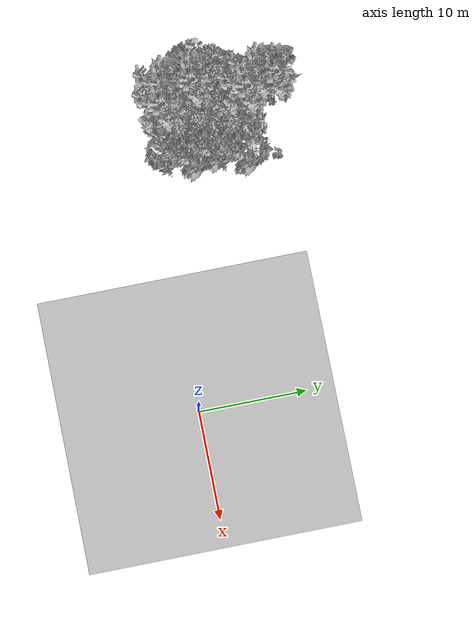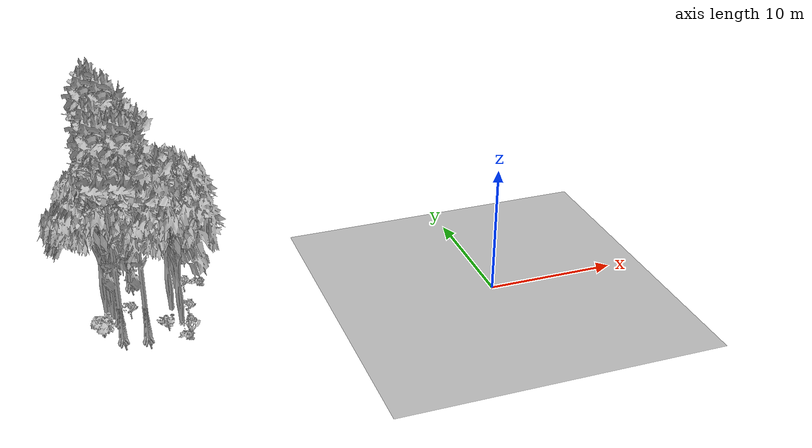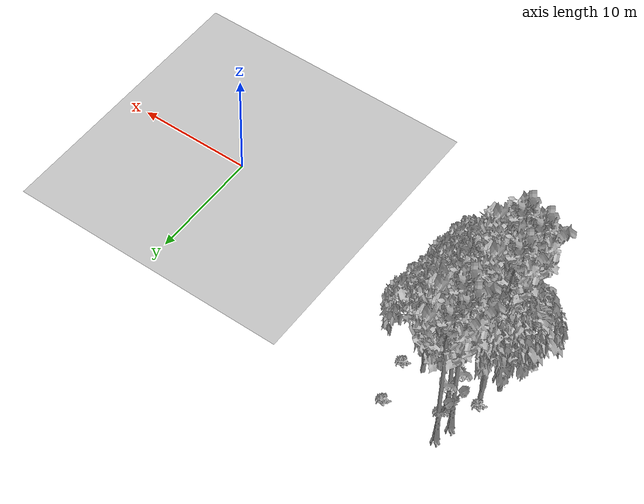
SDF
<sdf version="1.7">
 <world name="default">
  <model name="ground_plane">
   <static>1</static>
   <link name="link">
    <collision name="collision">
     <pose>-50 0 0 0 -0 0</pose>
     <geometry><plane><normal>0 0 1</normal><size>80 80</size></plane></geometry>
     <surface><contact><ode><min_depth>0.01</min_depth><max_vel>0</max_vel></ode></contact></surface>
    </collision>
    <visual name="grass">
     <cast_shadows>0</cast_shadows>
     <geometry>
      <mesh>
       <scale>0.46714285714285714 0.46714285714285714 0.1</scale>
       <uri>file://grass_plane/meshes/grass_plane.dae</uri>
      </mesh>
     </geometry>
    </visual>
   </link>
  </model>
  <model name="Tree 15">
   <static>1</static>
   <pose>-27.015665207595248 12.257064036631448 0 1.57079 -0 0</pose>
   <link name="link">
    <collision name="collision">
     <geometry><mesh><scale>3.5 5 3.5</scale><uri>model://tree_9/meshes/tree_9.obj</uri></mesh></geometry>
    </collision>
    <visual name="visual">
     <geometry><mesh><scale>3.5 5 3.5</scale><uri>model://tree_9/meshes/tree_9.obj</uri></mesh></geometry>
    </visual>
   </link>
  </model>
  <model name="Tree 131">
   <static>1</static>
   <pose>-28.19869476502873 5.2655762239955095 0 1.57079 -0 0</pose>
   <link name="link">
    <collision name="collision">
     <geometry><mesh><scale>3.5 5 3.5</scale><uri>model://tree_2/meshes/tree_2.obj</uri></mesh></geometry>
    </collision>
    <visual name="visual">
     <geometry><mesh><scale>3.5 5 3.5</scale><uri>model://tree_2/meshes/tree_2.obj</uri></mesh></geometry>
    </visual>
   </link>
  </model>
  <model name="Tree 147">
   <static>1</static>
   <pose>-23.08336777062552 7.896392498006797 0 1.57079 -0 0</pose>
   <link name="link">
    <collision name="collision">
     <geometry><mesh><scale>3.5 5 3.5</scale><uri>model://tree_2/meshes/tree_2.obj</uri></mesh></geometry>
    </collision>
    <visual name="visual">
     <geometry><mesh><scale>3.5 5 3.5</scale><uri>model://tree_2/meshes/tree_2.obj</uri></mesh></geometry>
    </visual>
   </link>
  </model>
  <model name="Tree 149">
   <static>1</static>
   <pose>-23.545101295304256 3.0394723315278753 0 1.57079 -0 0</pose>
   <link name="link">
    <collision name="collision">
     <geometry><mesh><scale>3.5 5 3.5</scale><uri>model://tree_2/meshes/tree_2.obj</uri></mesh></geometry>
    </collision>
    <visual name="visual">
     <geometry><mesh><scale>3.5 5 3.5</scale><uri>model://tree_2/meshes/tree_2.obj</uri></mesh></geometry>
    </visual>
   </link>
  </model>
  <model name="Tree 186">
   <static>1</static>
   <pose>-27.82963190707264 7.340334555873689 0 1.57079 -0 0</pose>
   <link name="link">
    <collision name="collision">
     <geometry><mesh><scale>3.5 5 3.5</scale><uri>model://tree_2/meshes/tree_2.obj</uri></mesh></geometry>
    </collision>
    <visual name="visual">
     <geometry><mesh><scale>3.5 5 3.5</scale><uri>model://tree_2/meshes/tree_2.obj</uri></mesh></geometry>
    </visual>
   </link>
  </model>
  <model name="Tree 234">
   <static>1</static>
   <pose>-28.598061604808265 5.8959532349336925 0 1.57079 -0 0</pose>
   <link name="link">
    <collision name="collision">
     <geometry><mesh><scale>3.5 5 3.5</scale><uri>model://tree_2/meshes/tree_2.obj</uri></mesh></geometry>
    </collision>
    <visual name="visual">
     <geometry><mesh><scale>3.5 5 3.5</scale><uri>model://tree_2/meshes/tree_2.obj</uri></mesh></geometry>
    </visual>
   </link>
  </model>
  <model name="Tree 235">
   <static>1</static>
   <pose>-23.94686296382558 5.0605157887511325 0 1.57079 -0 0</pose>
   <link name="link">
    <collision name="collision">
     <geometry><mesh><scale>3.5 5 3.5</scale><uri>model://tree_2/meshes/tree_2.obj</uri></mesh></geometry>
    </collision>
    <visual name="visual">
     <geometry><mesh><scale>3.5 5 3.5</scale><uri>model://tree_2/meshes/tree_2.obj</uri></mesh></geometry>
    </visual>
   </link>
  </model>
  <model name="Tree 311">
   <static>1</static>
   <pose>-26.252629105778666 9.60017479138508 0 1.57079 -0 0</pose>
   <link name="link">
    <collision name="collision">
     <geometry><mesh><scale>3.5 5 3.5</scale><uri>model://tree_9/meshes/tree_9.obj</uri></mesh></geometry>
    </collision>
    <visual name="visual">
     <geometry><mesh><scale>3.5 5 3.5</scale><uri>model://tree_9/meshes/tree_9.obj</uri></mesh></geometry>
    </visual>
   </link>
  </model>
  <model name="Tree 392">
   <static>1</static>
   <pose>-27.742651277677165 4.94363627334571 0 1.57079 -0 0</pose>
   <link name="link">
    <collision name="collision">
     <geometry><mesh><scale>3.5 5 3.5</scale><uri>model://tree_9/meshes/tree_9.obj</uri></mesh></geometry>
    </collision>
    <visual name="visual">
     <geometry><mesh><scale>3.5 5 3.5</scale><uri>model://tree_9/meshes/tree_9.obj</uri></mesh></geometry>
    </visual>
   </link>
  </model>
  <model name="Tree 467">
   <static>1</static>
   <pose>-27.350768139440298 10.802795858157303 0 1.57079 -0 0</pose>
   <link name="link">
    <collision name="collision">
     <geometry><mesh><scale>3.5 5 3.5</scale><uri>model://tree_9/meshes/tree_9.obj</uri></mesh></geometry>
    </collision>
    <visual name="visual">
     <geometry><mesh><scale>3.5 5 3.5</scale><uri>model://tree_9/meshes/tree_9.obj</uri></mesh></geometry>
    </visual>
   </link>
  </model>
  <model name="Tree 553">
   <static>1</static>
   <pose>-26.12132141552373 1.9750665769441014 0 1.57079 -0 0</pose>
   <link name="link">
    <collision name="collision">
     <geometry><mesh><scale>3.5 5 3.5</scale><uri>model://tree_9/meshes/tree_9.obj</uri></mesh></geometry>
    </collision>
    <visual name="visual">
     <geometry><mesh><scale>3.5 5 3.5</scale><uri>model://tree_9/meshes/tree_9.obj</uri></mesh></geometry>
    </visual>
   </link>
  </model>
  <model name="Tree 576">
   <static>1</static>
   <pose>-27.845761584042002 2.405263810703488 0 1.57079 -0 0</pose>
   <link name="link">
    <collision name="collision">
     <geometry><mesh><scale>3.5 5 3.5</scale><uri>model://tree_9/meshes/tree_9.obj</uri></mesh></geometry>
    </collision>
    <visual name="visual">
     <geometry><mesh><scale>3.5 5 3.5</scale><uri>model://tree_9/meshes/tree_9.obj</uri></mesh></geometry>
    </visual>
   </link>
  </model>
  <model name="Bush 92">
   <static>1</static>
   <pose>-22.506670749690663 7.122766279451362 0 1.57079 -0 0</pose>
   <link name="link">
    <collision name="collision">
     <geometry><mesh><scale>2 2 2</scale><uri>model://bush_5/meshes/bush_5.obj</uri></mesh></geometry>
     <surface><contact><collide_without_contact>false</collide_without_contact></contact></surface>
    </collision>
    <visual name="visual">
     <geometry><mesh><scale>2 2 2</scale><uri>model://bush_5/meshes/bush_5.obj</uri></mesh></geometry>
    </visual>
   </link>
  </model>
  <model name="Bush 120">
   <static>1</static>
   <pose>-22.79683364109927 3.7263481034286627 0 1.57079 -0 0</pose>
   <link name="link">
    <collision name="collision">
     <geometry><mesh><scale>2 2 2</scale><uri>model://bush_5/meshes/bush_5.obj</uri></mesh></geometry>
     <surface><contact><collide_without_contact>false</collide_without_contact></contact></surface>
    </collision>
    <visual name="visual">
     <geometry><mesh><scale>2 2 2</scale><uri>model://bush_5/meshes/bush_5.obj</uri></mesh></geometry>
    </visual>
   </link>
  </model>
  <model name="Bush 142">
   <static>1</static>
   <pose>-22.03742543612815 11.773401519567592 0 1.57079 -0 0</pose>
   <link name="link">
    <collision name="collision">
     <geometry><mesh><scale>2 2 2</scale><uri>model://bush_2/meshes/bush_2.obj</uri></mesh></geometry>
     <surface><contact><collide_without_contact>false</collide_without_contact></contact></surface>
    </collision>
    <visual name="visual">
     <geometry><mesh><scale>2 2 2</scale><uri>model://bush_2/meshes/bush_2.obj</uri></mesh></geometry>
    </visual>
   </link>
  </model>
  <model name="Bush 192">
   <static>1</static>
   <pose>-26.048507889930896 10.210212394825852 0 1.57079 -0 0</pose>
   <link name="link">
    <collision name="collision">
     <geometry><mesh><scale>2 2 2</scale><uri>model://bush_2/meshes/bush_2.obj</uri></mesh></geometry>
     <surface><contact><collide_without_contact>false</collide_without_contact></contact></surface>
    </collision>
    <visual name="visual">
     <geometry><mesh><scale>2 2 2</scale><uri>model://bush_2/meshes/bush_2.obj</uri></mesh></geometry>
    </visual>
   </link>
  </model>
  <model name="Bush 229">
   <static>1</static>
   <pose>-26.872713190824204 4.722907799907787 0 1.57079 -0 0</pose>
   <link name="link">
    <collision name="collision">
     <geometry><mesh><scale>2 2 2</scale><uri>model://bush_5/meshes/bush_5.obj</uri></mesh></geometry>
     <surface><contact><collide_without_contact>false</collide_without_contact></contact></surface>
    </collision>
    <visual name="visual">
     <geometry><mesh><scale>2 2 2</scale><uri>model://bush_5/meshes/bush_5.obj</uri></mesh></geometry>
    </visual>
   </link>
  </model>
  <model name="Bush 238">
   <static>1</static>
   <pose>-24.539984997249512 2.2769450026910363 0 1.57079 -0 0</pose>
   <link name="link">
    <collision name="collision">
     <geometry><mesh><scale>2 2 2</scale><uri>model://bush_0/meshes/bush_0.obj</uri></mesh></geometry>
     <surface><contact><collide_without_contact>false</collide_without_contact></contact></surface>
    </collision>
    <visual name="visual">
     <geometry><mesh><scale>2 2 2</scale><uri>model://bush_0/meshes/bush_0.obj</uri></mesh></geometry>
    </visual>
   </link>
  </model>
  <model name="Bush 311">
   <static>1</static>
   <pose>-21.309597399826163 8.116897292876821 0 1.57079 -0 0</pose>
   <link name="link">
    <collision name="collision">
     <geometry><mesh><scale>2 2 2</scale><uri>model://bush_2/meshes/bush_2.obj</uri></mesh></geometry>
     <surface><contact><collide_without_contact>false</collide_without_contact></contact></surface>
    </collision>
    <visual name="visual">
     <geometry><mesh><scale>2 2 2</scale><uri>model://bush_2/meshes/bush_2.obj</uri></mesh></geometry>
    </visual>
   </link>
  </model>
  <model name="Bush 329">
   <static>1</static>
   <pose>-23.450758536749568 1.1430969385533274 0 1.57079 -0 0</pose>
   <link name="link">
    <collision name="collision">
     <geometry><mesh><scale>2 2 2</scale><uri>model://bush_2/meshes/bush_2.obj</uri></mesh></geometry>
     <surface><contact><collide_without_contact>false</collide_without_contact></contact></surface>
    </collision>
    <visual name="visual">
     <geometry><mesh><scale>2 2 2</scale><uri>model://bush_2/meshes/bush_2.obj</uri></mesh></geometry>
    </visual>
   </link>
  </model>
  <model name="Bush 461">
   <static>1</static>
   <pose>-27.998743316895677 7.9757861095735265 0 1.57079 -0 0</pose>
   <link name="link">
    <collision name="collision">
     <geometry><mesh><scale>2 2 2</scale><uri>model://bush_2/meshes/bush_2.obj</uri></mesh></geometry>
     <surface><contact><collide_without_contact>false</collide_without_contact></contact></surface>
    </collision>
    <visual name="visual">
     <geometry><mesh><scale>2 2 2</scale><uri>model://bush_2/meshes/bush_2.obj</uri></mesh></geometry>
    </visual>
   </link>
  </model>
  <model name="Bush 545">
   <static>1</static>
   <pose>-23.073859618053334 1.6712438478606444 0 1.57079 -0 0</pose>
   <link name="link">
    <collision name="collision">
     <geometry><mesh><scale>2 2 2</scale><uri>model://bush_4/meshes/bush_4.obj</uri></mesh></geometry>
     <surface><contact><collide_without_contact>false</collide_without_contact></contact></surface>
    </collision>
    <visual name="visual">
     <geometry><mesh><scale>2 2 2</scale><uri>model://bush_4/meshes/bush_4.obj</uri></mesh></geometry>
    </visual>
   </link>
  </model>
  <model name="Bush 577">
   <static>1</static>
   <pose>-29.102108684036438 2.9117592873271363 0 1.57079 -0 0</pose>
   <link name="link">
    <collision name="collision">
     <geometry><mesh><scale>2 2 2</scale><uri>model://bush_1/meshes/bush_1.obj</uri></mesh></geometry>
     <surface><contact><collide_without_contact>false</collide_without_contact></contact></surface>
    </collision>
    <visual name="visual">
     <geometry><mesh><scale>2 2 2</scale><uri>model://bush_1/meshes/bush_1.obj</uri></mesh></geometry>
    </visual>
   </link>
  </model>
 </world>
</sdf>
